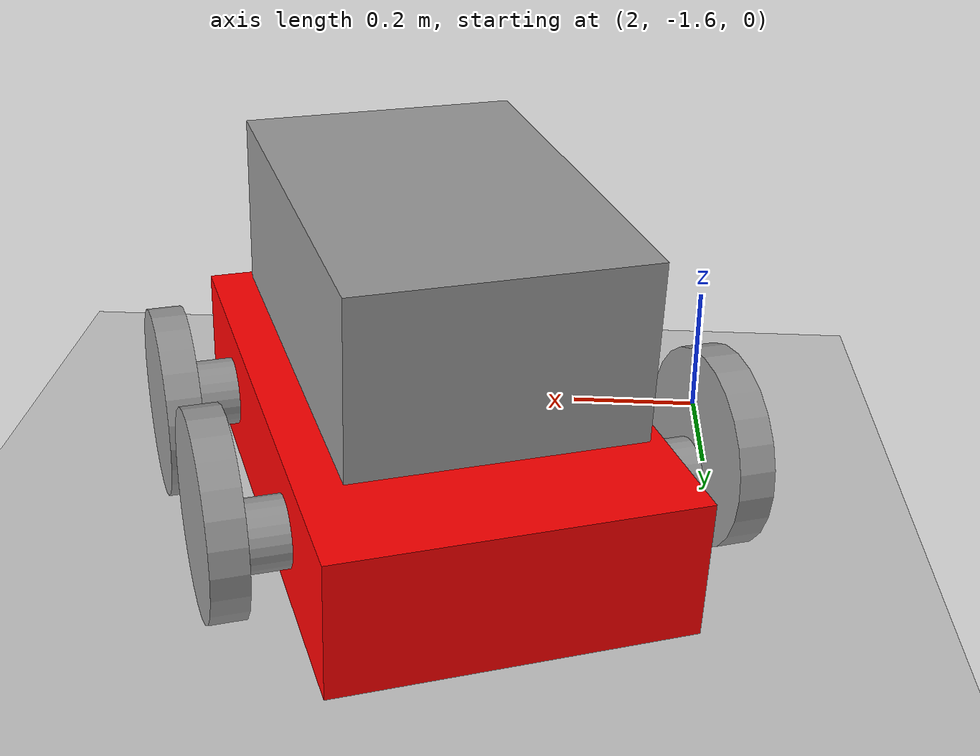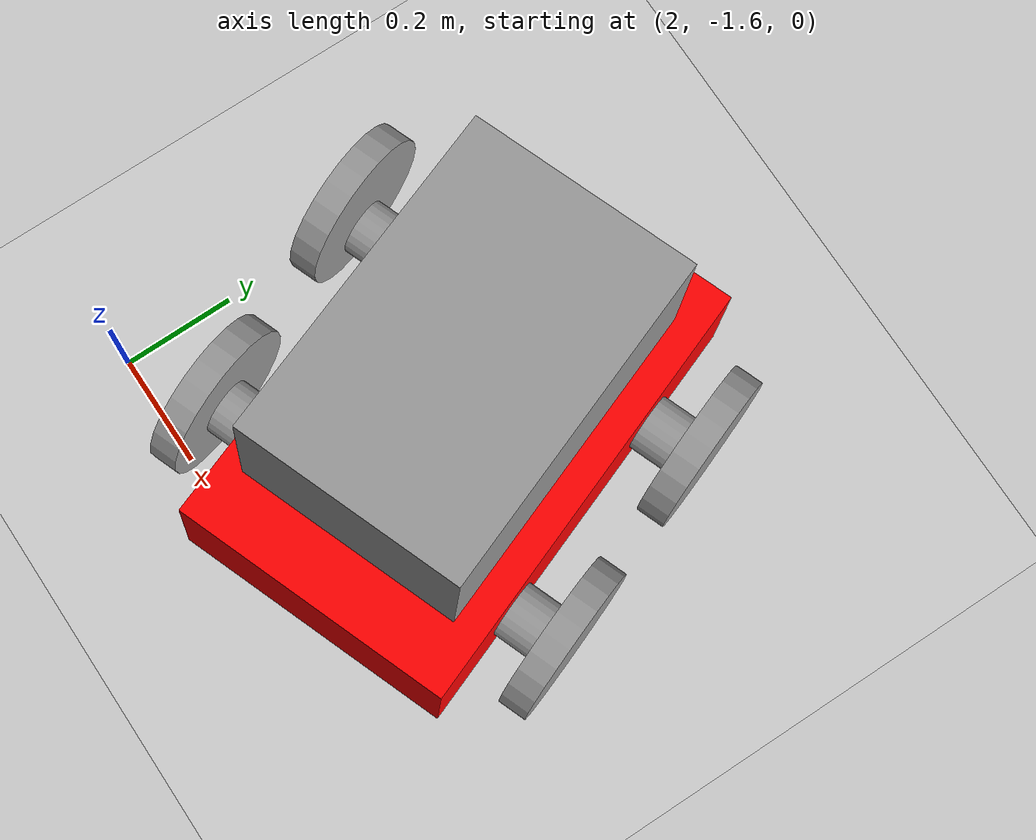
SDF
<sdf version="1.6">
 <world name="default">
  <model name="ground_plane">
   <static>1</static>
   <link name="link">
    <collision name="collision">
     <geometry><plane><normal>0 0 1</normal><size>100 100</size></plane></geometry>
     <surface><friction><ode><mu>100</mu><mu2>50</mu2></ode></friction></surface>
    </collision>
    <visual name="visual">
     <cast_shadows>0</cast_shadows>
     <geometry><plane><normal>0 0 1</normal><size>100 100</size></plane></geometry>
     <material>
      <script><uri>file://media/materials/scripts/gazebo.material</uri><name>Gazebo/Grey</name></script>
     </material>
    </visual>
   </link>
  </model>
  <model name="minikart">
   <link name="link_0">
    <inertial>
     <mass>1</mass>
     <inertia>
      <ixx>0.166667</ixx>
      <ixy>0</ixy>
      <ixz>0</ixz>
      <iyy>0.166667</iyy>
      <iyz>0</iyz>
      <izz>0.166667</izz>
     </inertia>
    </inertial>
    <pose>-0.020217 -0.007477 -0.044375 0 -0 0</pose>
    <visual name="visual">
     <geometry><box><size>0.8 0.5 0.2</size></box></geometry>
     <material>
      <lighting>1</lighting>
      <script><uri>file://media/materials/scripts/gazebo.material</uri><name>Gazebo/Grey</name></script>
      <shader type="pixel"><normal_map>__default__</normal_map></shader>
      <ambient>1 0 0 1</ambient>
      <diffuse>1 0 0 1</diffuse>
      <specular>0.5 0.01 0.01 1</specular>
      <emissive>0 0 0 1</emissive>
     </material>
    </visual>
    <collision name="collision">
     <geometry><box><size>0.8 0.5 0.2</size></box></geometry>
     <surface>
      <friction>
       <ode><mu>1</mu><mu2>1</mu2><fdir1>0 0 0</fdir1><slip1>0</slip1><slip2>0</slip2></ode>
       <torsional>
        <coefficient>1</coefficient>
        <patch_radius>0</patch_radius>
        <surface_radius>0</surface_radius>
        <use_patch_radius>1</use_patch_radius>
        <ode><slip>0</slip></ode>
       </torsional>
      </friction>
      <bounce><restitution_coefficient>0</restitution_coefficient><threshold>1e+06</threshold></bounce>
      <contact>
       <collide_without_contact>0</collide_without_contact>
       <collide_without_contact_bitmask>1</collide_without_contact_bitmask>
       <collide_bitmask>1</collide_bitmask>
       <ode>
        <soft_cfm>0</soft_cfm>
        <soft_erp>0.2</soft_erp>
        <kp>1e+13</kp>
        <kd>1</kd>
        <max_vel>0.01</max_vel>
        <min_depth>0</min_depth>
       </ode>
       <bullet>
        <split_impulse>1</split_impulse>
        <split_impulse_penetration_threshold>-0.01</split_impulse_penetration_threshold>
        <soft_cfm>0</soft_cfm>
        <soft_erp>0.2</soft_erp>
        <kp>1e+13</kp>
        <kd>1</kd>
       </bullet>
      </contact>
     </surface>
    </collision>
   </link>
   <link name="link_1">
    <inertial>
     <mass>1</mass>
     <inertia><ixx>0.145833</ixx><ixy>0</ixy><ixz>0</ixz><iyy>0.145833</iyy><iyz>0</iyz><izz>0.125</izz></inertia>
    </inertial>
    <pose>-0.198848 -0.00709 -0.044375 0 -0 0</pose>
    <visual name="visual">
     <pose>0 0 0 1.5708 -0 0</pose>
     <geometry><cylinder><radius>0.05</radius><length>0.7</length></cylinder></geometry>
     <material>
      <lighting>1</lighting>
      <script><uri>file://media/materials/scripts/gazebo.material</uri><name>Gazebo/Grey</name></script>
      <shader type="pixel"><normal_map>__default__</normal_map></shader>
      <ambient>0 0 0 1</ambient>
      <diffuse>0 0 0 1</diffuse>
      <specular>0 0 0 1</specular>
      <emissive>0 0 0 1</emissive>
     </material>
    </visual>
    <collision name="collision">
     <pose>0 0 0 1.5708 -0 0</pose>
     <geometry><cylinder><radius>0.05</radius><length>0.7</length></cylinder></geometry>
     <surface>
      <friction>
       <ode><mu>1</mu><mu2>1</mu2><fdir1>0 0 0</fdir1><slip1>0</slip1><slip2>0</slip2></ode>
       <torsional>
        <coefficient>1</coefficient>
        <patch_radius>0</patch_radius>
        <surface_radius>0</surface_radius>
        <use_patch_radius>1</use_patch_radius>
        <ode><slip>0</slip></ode>
       </torsional>
      </friction>
      <bounce><restitution_coefficient>0</restitution_coefficient><threshold>1e+06</threshold></bounce>
      <contact>
       <collide_without_contact>0</collide_without_contact>
       <collide_without_contact_bitmask>1</collide_without_contact_bitmask>
       <collide_bitmask>1</collide_bitmask>
       <ode>
        <soft_cfm>0</soft_cfm>
        <soft_erp>0.2</soft_erp>
        <kp>1e+13</kp>
        <kd>1</kd>
        <max_vel>0.01</max_vel>
        <min_depth>0</min_depth>
       </ode>
       <bullet>
        <split_impulse>1</split_impulse>
        <split_impulse_penetration_threshold>-0.01</split_impulse_penetration_threshold>
        <soft_cfm>0</soft_cfm>
        <soft_erp>0.2</soft_erp>
        <kp>1e+13</kp>
        <kd>1</kd>
       </bullet>
      </contact>
     </surface>
    </collision>
   </link>
   <link name="link_1_clone">
    <inertial>
     <mass>1</mass>
     <inertia><ixx>0.145833</ixx><ixy>0</ixy><ixz>0</ixz><iyy>0.145833</iyy><iyz>0</iyz><izz>0.125</izz></inertia>
    </inertial>
    <pose>0.182326 -0.007416 -0.044375 0 -0 0</pose>
    <visual name="visual">
     <pose>0 0 0 1.5708 -0 0</pose>
     <geometry><cylinder><radius>0.05</radius><length>0.7</length></cylinder></geometry>
     <material>
      <lighting>1</lighting>
      <script><uri>file://media/materials/scripts/gazebo.material</uri><name>Gazebo/Grey</name></script>
      <shader type="pixel"><normal_map>__default__</normal_map></shader>
      <ambient>0 0 0 1</ambient>
      <diffuse>0 0 0 1</diffuse>
      <specular>0 0 0 1</specular>
      <emissive>0 0 0 1</emissive>
     </material>
    </visual>
    <collision name="collision">
     <pose>0 0 0 1.5708 -0 0</pose>
     <geometry><cylinder><radius>0.05</radius><length>0.7</length></cylinder></geometry>
     <surface>
      <friction>
       <ode><mu>1</mu><mu2>1</mu2><fdir1>0 0 0</fdir1><slip1>0</slip1><slip2>0</slip2></ode>
       <torsional>
        <coefficient>1</coefficient>
        <patch_radius>0</patch_radius>
        <surface_radius>0</surface_radius>
        <use_patch_radius>1</use_patch_radius>
        <ode><slip>0</slip></ode>
       </torsional>
      </friction>
      <bounce><restitution_coefficient>0</restitution_coefficient><threshold>1e+06</threshold></bounce>
      <contact>
       <collide_without_contact>0</collide_without_contact>
       <collide_without_contact_bitmask>1</collide_without_contact_bitmask>
       <collide_bitmask>1</collide_bitmask>
       <ode>
        <soft_cfm>0</soft_cfm>
        <soft_erp>0.2</soft_erp>
        <kp>1e+13</kp>
        <kd>1</kd>
        <max_vel>0.01</max_vel>
        <min_depth>0</min_depth>
       </ode>
       <bullet>
        <split_impulse>1</split_impulse>
        <split_impulse_penetration_threshold>-0.01</split_impulse_penetration_threshold>
        <soft_cfm>0</soft_cfm>
        <soft_erp>0.2</soft_erp>
        <kp>1e+13</kp>
        <kd>1</kd>
       </bullet>
      </contact>
     </surface>
    </collision>
   </link>
   <link name="link_2">
    <inertial>
     <mass>1</mass>
     <inertia><ixx>0.145833</ixx><ixy>0</ixy><ixz>0</ixz><iyy>0.145833</iyy><iyz>0</iyz><izz>0.125</izz></inertia>
    </inertial>
    <pose>0.176149 -0.348651 -0.044375 0 -0 0</pose>
    <visual name="visual">
     <pose>0 0 0 1.5708 -0 0</pose>
     <geometry><cylinder><radius>0.14</radius><length>0.05</length></cylinder></geometry>
     <material>
      <lighting>1</lighting>
      <script><uri>file://media/materials/scripts/gazebo.material</uri><name>Gazebo/Grey</name></script>
      <shader type="pixel"><normal_map>__default__</normal_map></shader>
      <ambient>0 0 0 1</ambient>
      <diffuse>0 0 0 1</diffuse>
      <specular>0 0 0 1</specular>
      <emissive>0 0 0 1</emissive>
     </material>
    </visual>
    <collision name="collision">
     <pose>0 0 0 1.5708 -0 0</pose>
     <geometry><cylinder><radius>0.14</radius><length>0.05</length></cylinder></geometry>
     <surface>
      <friction>
       <ode><mu>1</mu><mu2>1</mu2><fdir1>0 0 0</fdir1><slip1>0</slip1><slip2>0</slip2></ode>
       <torsional>
        <coefficient>1</coefficient>
        <patch_radius>0</patch_radius>
        <surface_radius>0</surface_radius>
        <use_patch_radius>1</use_patch_radius>
        <ode><slip>0</slip></ode>
       </torsional>
      </friction>
      <bounce><restitution_coefficient>0</restitution_coefficient><threshold>1e+06</threshold></bounce>
      <contact>
       <collide_without_contact>0</collide_without_contact>
       <collide_without_contact_bitmask>1</collide_without_contact_bitmask>
       <collide_bitmask>1</collide_bitmask>
       <ode>
        <soft_cfm>0</soft_cfm>
        <soft_erp>0.2</soft_erp>
        <kp>1e+13</kp>
        <kd>1</kd>
        <max_vel>0.01</max_vel>
        <min_depth>0</min_depth>
       </ode>
       <bullet>
        <split_impulse>1</split_impulse>
        <split_impulse_penetration_threshold>-0.01</split_impulse_penetration_threshold>
        <soft_cfm>0</soft_cfm>
        <soft_erp>0.2</soft_erp>
        <kp>1e+13</kp>
        <kd>1</kd>
       </bullet>
      </contact>
     </surface>
    </collision>
   </link>
   <link name="link_2_clone">
    <inertial>
     <mass>1</mass>
     <inertia><ixx>0.145833</ixx><ixy>0</ixy><ixz>0</ixz><iyy>0.145833</iyy><iyz>0</iyz><izz>0.125</izz></inertia>
    </inertial>
    <pose>0.17409 0.334641 -0.044375 0 -0 0</pose>
    <visual name="visual">
     <pose>0 0 0 1.5708 -0 0</pose>
     <geometry><cylinder><radius>0.14</radius><length>0.05</length></cylinder></geometry>
     <material>
      <lighting>1</lighting>
      <script><uri>file://media/materials/scripts/gazebo.material</uri><name>Gazebo/Grey</name></script>
      <shader type="pixel"><normal_map>__default__</normal_map></shader>
      <ambient>0 0 0 1</ambient>
      <diffuse>0 0 0 1</diffuse>
      <specular>0 0 0 1</specular>
      <emissive>0 0 0 1</emissive>
     </material>
    </visual>
    <collision name="collision">
     <pose>0 0 0 1.5708 -0 0</pose>
     <geometry><cylinder><radius>0.14</radius><length>0.05</length></cylinder></geometry>
     <surface>
      <friction>
       <ode><mu>1</mu><mu2>1</mu2><fdir1>0 0 0</fdir1><slip1>0</slip1><slip2>0</slip2></ode>
       <torsional>
        <coefficient>1</coefficient>
        <patch_radius>0</patch_radius>
        <surface_radius>0</surface_radius>
        <use_patch_radius>1</use_patch_radius>
        <ode><slip>0</slip></ode>
       </torsional>
      </friction>
      <bounce><restitution_coefficient>0</restitution_coefficient><threshold>1e+06</threshold></bounce>
      <contact>
       <collide_without_contact>0</collide_without_contact>
       <collide_without_contact_bitmask>1</collide_without_contact_bitmask>
       <collide_bitmask>1</collide_bitmask>
       <ode>
        <soft_cfm>0</soft_cfm>
        <soft_erp>0.2</soft_erp>
        <kp>1e+13</kp>
        <kd>1</kd>
        <max_vel>0.01</max_vel>
        <min_depth>0</min_depth>
       </ode>
       <bullet>
        <split_impulse>1</split_impulse>
        <split_impulse_penetration_threshold>-0.01</split_impulse_penetration_threshold>
        <soft_cfm>0</soft_cfm>
        <soft_erp>0.2</soft_erp>
        <kp>1e+13</kp>
        <kd>1</kd>
       </bullet>
      </contact>
     </surface>
    </collision>
   </link>
   <link name="link_2_clone_0">
    <inertial>
     <mass>1</mass>
     <inertia><ixx>0.145833</ixx><ixy>0</ixy><ixz>0</ixz><iyy>0.145833</iyy><iyz>0</iyz><izz>0.125</izz></inertia>
    </inertial>
    <pose>-0.201075 0.337015 0.000625 0 -0 0</pose>
    <visual name="visual">
     <pose>0 0 0 1.5708 -0 0</pose>
     <geometry><cylinder><radius>0.14</radius><length>0.05</length></cylinder></geometry>
     <material>
      <lighting>1</lighting>
      <script><uri>file://media/materials/scripts/gazebo.material</uri><name>Gazebo/Grey</name></script>
      <shader type="pixel"><normal_map>__default__</normal_map></shader>
      <ambient>0 0 0 1</ambient>
      <diffuse>0 0 0 1</diffuse>
      <specular>0 0 0 1</specular>
      <emissive>0 0 0 1</emissive>
     </material>
    </visual>
    <collision name="collision">
     <pose>0 0 0 1.5708 -0 0</pose>
     <geometry><cylinder><radius>0.14</radius><length>0.05</length></cylinder></geometry>
     <surface>
      <friction>
       <ode><mu>1</mu><mu2>1</mu2><fdir1>0 0 0</fdir1><slip1>0</slip1><slip2>0</slip2></ode>
       <torsional>
        <coefficient>1</coefficient>
        <patch_radius>0</patch_radius>
        <surface_radius>0</surface_radius>
        <use_patch_radius>1</use_patch_radius>
        <ode><slip>0</slip></ode>
       </torsional>
      </friction>
      <bounce><restitution_coefficient>0</restitution_coefficient><threshold>1e+06</threshold></bounce>
      <contact>
       <collide_without_contact>0</collide_without_contact>
       <collide_without_contact_bitmask>1</collide_without_contact_bitmask>
       <collide_bitmask>1</collide_bitmask>
       <ode>
        <soft_cfm>0</soft_cfm>
        <soft_erp>0.2</soft_erp>
        <kp>1e+13</kp>
        <kd>1</kd>
        <max_vel>0.01</max_vel>
        <min_depth>0</min_depth>
       </ode>
       <bullet>
        <split_impulse>1</split_impulse>
        <split_impulse_penetration_threshold>-0.01</split_impulse_penetration_threshold>
        <soft_cfm>0</soft_cfm>
        <soft_erp>0.2</soft_erp>
        <kp>1e+13</kp>
        <kd>1</kd>
       </bullet>
      </contact>
     </surface>
    </collision>
   </link>
   <link name="link_2_clone_1">
    <inertial>
     <mass>1</mass>
     <inertia><ixx>0.145833</ixx><ixy>0</ixy><ixz>0</ixz><iyy>0.145833</iyy><iyz>0</iyz><izz>0.125</izz></inertia>
    </inertial>
    <pose>-0.20738 -0.355325 0.000625 0 -0 0</pose>
    <visual name="visual">
     <pose>0 0 0 1.5708 -0 0</pose>
     <geometry><cylinder><radius>0.14</radius><length>0.05</length></cylinder></geometry>
     <material>
      <lighting>1</lighting>
      <script><uri>file://media/materials/scripts/gazebo.material</uri><name>Gazebo/Grey</name></script>
      <shader type="pixel"><normal_map>__default__</normal_map></shader>
      <ambient>0 0 0 1</ambient>
      <diffuse>0 0 0 1</diffuse>
      <specular>0 0 0 1</specular>
      <emissive>0 0 0 1</emissive>
     </material>
    </visual>
    <collision name="collision">
     <pose>0 0 0 1.5708 -0 0</pose>
     <geometry><cylinder><radius>0.14</radius><length>0.05</length></cylinder></geometry>
     <surface>
      <friction>
       <ode><mu>1</mu><mu2>1</mu2><fdir1>0 0 0</fdir1><slip1>0</slip1><slip2>0</slip2></ode>
       <torsional>
        <coefficient>1</coefficient>
        <patch_radius>0</patch_radius>
        <surface_radius>0</surface_radius>
        <use_patch_radius>1</use_patch_radius>
        <ode><slip>0</slip></ode>
       </torsional>
      </friction>
      <bounce><restitution_coefficient>0</restitution_coefficient><threshold>1e+06</threshold></bounce>
      <contact>
       <collide_without_contact>0</collide_without_contact>
       <collide_without_contact_bitmask>1</collide_without_contact_bitmask>
       <collide_bitmask>1</collide_bitmask>
       <ode>
        <soft_cfm>0</soft_cfm>
        <soft_erp>0.2</soft_erp>
        <kp>1e+13</kp>
        <kd>1</kd>
        <max_vel>0.01</max_vel>
        <min_depth>0</min_depth>
       </ode>
       <bullet>
        <split_impulse>1</split_impulse>
        <split_impulse_penetration_threshold>-0.01</split_impulse_penetration_threshold>
        <soft_cfm>0</soft_cfm>
        <soft_erp>0.2</soft_erp>
        <kp>1e+13</kp>
        <kd>1</kd>
       </bullet>
      </contact>
     </surface>
    </collision>
   </link>
   <link name="link_3">
    <inertial>
     <mass>1</mass>
     <inertia>
      <ixx>0.166667</ixx>
      <ixy>0</ixy>
      <ixz>0</ixz>
      <iyy>0.166667</iyy>
      <iyz>0</iyz>
      <izz>0.166667</izz>
     </inertia>
    </inertial>
    <pose>-0.020217 -0.007477 0.220625 0 -0 0</pose>
    <visual name="visual">
     <geometry><box><size>0.6 0.4 0.25</size></box></geometry>
     <material>
      <lighting>1</lighting>
      <script><uri>file://media/materials/scripts/gazebo.material</uri><name>Gazebo/Grey</name></script>
      <shader type="pixel"><normal_map>__default__</normal_map></shader>
      <ambient>1 1 1 1</ambient>
      <diffuse>1 1 1 1</diffuse>
      <specular>0.01 0.01 0.01 1</specular>
      <emissive>0 0 0 1</emissive>
     </material>
    </visual>
    <collision name="collision">
     <geometry><box><size>0.6 0.4 0.25</size></box></geometry>
     <surface>
      <friction>
       <ode><mu>1</mu><mu2>1</mu2><fdir1>0 0 0</fdir1><slip1>0</slip1><slip2>0</slip2></ode>
       <torsional>
        <coefficient>1</coefficient>
        <patch_radius>0</patch_radius>
        <surface_radius>0</surface_radius>
        <use_patch_radius>1</use_patch_radius>
        <ode><slip>0</slip></ode>
       </torsional>
      </friction>
      <bounce><restitution_coefficient>0</restitution_coefficient><threshold>1e+06</threshold></bounce>
      <contact>
       <collide_without_contact>0</collide_without_contact>
       <collide_without_contact_bitmask>1</collide_without_contact_bitmask>
       <collide_bitmask>1</collide_bitmask>
       <ode>
        <soft_cfm>0</soft_cfm>
        <soft_erp>0.2</soft_erp>
        <kp>1e+13</kp>
        <kd>1</kd>
        <max_vel>0.01</max_vel>
        <min_depth>0</min_depth>
       </ode>
       <bullet>
        <split_impulse>1</split_impulse>
        <split_impulse_penetration_threshold>-0.01</split_impulse_penetration_threshold>
        <soft_cfm>0</soft_cfm>
        <soft_erp>0.2</soft_erp>
        <kp>1e+13</kp>
        <kd>1</kd>
       </bullet>
      </contact>
     </surface>
    </collision>
   </link>
   <joint name="link_0_JOINT_5" type="revolute">
    <parent>link_0</parent>
    <child>link_3</child>
    <axis>
     <xyz>0 0 1</xyz>
     <use_parent_model_frame>0</use_parent_model_frame>
     <limit>
      <lower>-1.79769e+308</lower>
      <upper>1.79769e+308</upper>
      <effort>-1</effort>
      <velocity>-1</velocity>
     </limit>
     <dynamics>
      <spring_reference>0</spring_reference>
      <spring_stiffness>0</spring_stiffness>
      <damping>0</damping>
      <friction>0</friction>
     </dynamics>
    </axis>
    <physics>
     <ode><limit><cfm>0</cfm><erp>0.2</erp></limit><suspension><cfm>0</cfm><erp>0.2</erp></suspension></ode>
    </physics>
   </joint>
   <joint name="link_0_JOINT_7" type="fixed">
    <parent>link_0</parent>
    <child>link_1</child>
    <physics>
     <ode><limit><cfm>0</cfm><erp>0.2</erp></limit><suspension><cfm>0</cfm><erp>0.2</erp></suspension></ode>
    </physics>
   </joint>
   <joint name="link_0_JOINT_8" type="fixed">
    <parent>link_0</parent>
    <child>link_1_clone</child>
    <physics>
     <ode><limit><cfm>0</cfm><erp>0.2</erp></limit><suspension><cfm>0</cfm><erp>0.2</erp></suspension></ode>
    </physics>
   </joint>
   <joint name="link_1_JOINT_2" type="revolute">
    <parent>link_1</parent>
    <child>link_2_clone_0</child>
    <axis>
     <xyz>0 0 1</xyz>
     <use_parent_model_frame>0</use_parent_model_frame>
     <limit>
      <lower>-1.79769e+308</lower>
      <upper>1.79769e+308</upper>
      <effort>-1</effort>
      <velocity>-1</velocity>
     </limit>
     <dynamics>
      <spring_reference>0</spring_reference>
      <spring_stiffness>0</spring_stiffness>
      <damping>0</damping>
      <friction>0</friction>
     </dynamics>
    </axis>
    <physics>
     <ode><limit><cfm>0</cfm><erp>0.2</erp></limit><suspension><cfm>0</cfm><erp>0.2</erp></suspension></ode>
    </physics>
   </joint>
   <joint name="link_1_JOINT_3" type="revolute">
    <parent>link_1</parent>
    <child>link_2_clone_1</child>
    <axis>
     <xyz>0 0 1</xyz>
     <use_parent_model_frame>0</use_parent_model_frame>
     <limit>
      <lower>-1.79769e+308</lower>
      <upper>1.79769e+308</upper>
      <effort>-1</effort>
      <velocity>-1</velocity>
     </limit>
     <dynamics>
      <spring_reference>0</spring_reference>
      <spring_stiffness>0</spring_stiffness>
      <damping>0</damping>
      <friction>0</friction>
     </dynamics>
    </axis>
    <physics>
     <ode><limit><cfm>0</cfm><erp>0.2</erp></limit><suspension><cfm>0</cfm><erp>0.2</erp></suspension></ode>
    </physics>
   </joint>
   <joint name="link_1_clone_JOINT_0" type="revolute">
    <parent>link_1_clone</parent>
    <child>link_2</child>
    <axis>
     <xyz>0 0 1</xyz>
     <use_parent_model_frame>0</use_parent_model_frame>
     <limit>
      <lower>-1.79769e+308</lower>
      <upper>1.79769e+308</upper>
      <effort>-1</effort>
      <velocity>-1</velocity>
     </limit>
     <dynamics>
      <spring_reference>0</spring_reference>
      <spring_stiffness>0</spring_stiffness>
      <damping>0</damping>
      <friction>0</friction>
     </dynamics>
    </axis>
    <physics>
     <ode><limit><cfm>0</cfm><erp>0.2</erp></limit><suspension><cfm>0</cfm><erp>0.2</erp></suspension></ode>
    </physics>
   </joint>
   <joint name="link_1_clone_JOINT_1" type="revolute">
    <parent>link_1_clone</parent>
    <child>link_2_clone</child>
    <axis>
     <xyz>0 0 1</xyz>
     <use_parent_model_frame>0</use_parent_model_frame>
     <limit>
      <lower>-1.79769e+308</lower>
      <upper>1.79769e+308</upper>
      <effort>-1</effort>
      <velocity>-1</velocity>
     </limit>
     <dynamics>
      <spring_reference>0</spring_reference>
      <spring_stiffness>0</spring_stiffness>
      <damping>0</damping>
      <friction>0</friction>
     </dynamics>
    </axis>
    <physics>
     <ode><limit><cfm>0</cfm><erp>0.2</erp></limit><suspension><cfm>0</cfm><erp>0.2</erp></suspension></ode>
    </physics>
   </joint>
   <joint name="link_1_clone_JOINT_4" type="revolute">
    <parent>link_1_clone</parent>
    <child>link_2</child>
    <axis>
     <xyz>1 0 0</xyz>
     <use_parent_model_frame>0</use_parent_model_frame>
     <limit>
      <lower>-1.79769e+308</lower>
      <upper>1.79769e+308</upper>
      <effort>-1</effort>
      <velocity>-1</velocity>
     </limit>
     <dynamics>
      <spring_reference>0</spring_reference>
      <spring_stiffness>0</spring_stiffness>
      <damping>0</damping>
      <friction>0</friction>
     </dynamics>
    </axis>
    <physics>
     <ode><limit><cfm>0</cfm><erp>0.2</erp></limit><suspension><cfm>0</cfm><erp>0.2</erp></suspension></ode>
    </physics>
   </joint>
   <static>0</static>
   <pose>2.42566 -1.21822 0.173052 0.001956 -0.067891 -1.20258</pose>
  </model>
 </world>
</sdf>
